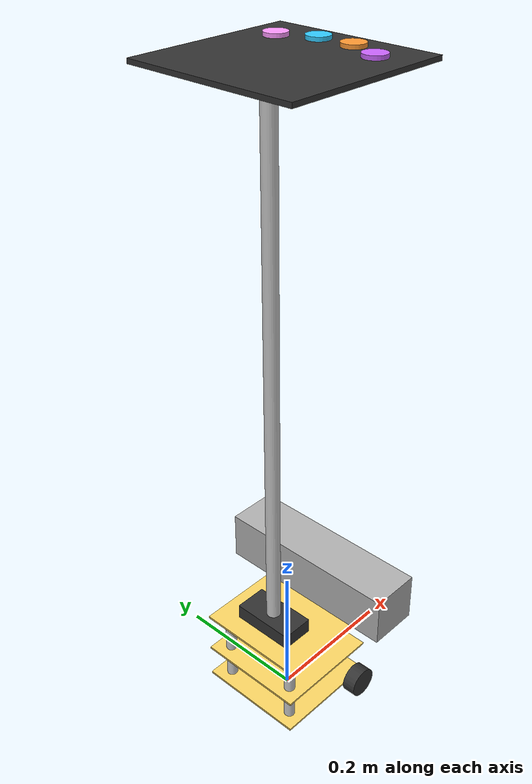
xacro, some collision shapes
<?xml version="1.0" ?>

<robot name="lazarillo" xmlns:xacro="http://www.ros.org/wiki/xacro">
  <!-- External Files -->
  <xacro:include filename="$(find lazarillo)/urdf/macros.xacro"/>

  <!-- Base Link -->
  <link name="base_link"/>

  <!-- Floor 1 -->
  <xacro:floor_link name="floor_1_link"/>
  <xacro:fixed_joint name="floor_1_joint" parent="base_link" child="floor_1_link" origin_xyz="0 0 0.02205"/>

  <!-- Floor 2 -->
  <xacro:floor_link name="floor_2_link"/>
  <xacro:fixed_joint name="floor_2_joint" parent="floor_1_link" child="floor_2_link" origin_xyz="0 0 0.0515"/>

  <!-- Floor 3 -->
  <xacro:floor_link name="floor_3_link"/>
  <xacro:fixed_joint name="floor_3_joint" parent="floor_2_link" child="floor_3_link" origin_xyz="0 0 0.0615"/>

  <!-- Floor 1 Column 1 -->
  <xacro:column_link name="column_1_1_link" height="0.05" color="white"/>
  <xacro:fixed_joint name="column_1_1_joint" parent="floor_1_link" child="column_1_1_link" origin_xyz="-0.058 -0.058 0.0265"/>

  <!-- Floor 1 Column 2 -->
  <xacro:column_link name="column_1_2_link" height="0.05" color="white"/>
  <xacro:fixed_joint name="column_1_2_joint" parent="floor_1_link" child="column_1_2_link" origin_xyz="-0.058 0.058 0.0265"/>

  <!-- Floor 1 Column 3 -->
  <xacro:column_link name="column_1_3_link" height="0.05" color="white"/>
  <xacro:fixed_joint name="column_1_3_joint" parent="floor_1_link" child="column_1_3_link" origin_xyz="0.05795 0.0359 0.0265"/>

  <!-- Floor 1 Column 4 -->
  <xacro:column_link name="column_1_4_link" height="0.05" color="white"/>
  <xacro:fixed_joint name="column_1_4_joint" parent="floor_1_link" child="column_1_4_link" origin_xyz="0.05795 -0.0359 0.0265"/>

  <!-- Floor 2 Column 1 -->
  <xacro:column_link name="column_2_1_link" height="0.06" color="white"/>
  <xacro:fixed_joint name="column_2_1_joint" parent="floor_2_link" child="column_2_1_link" origin_xyz="-0.058 -0.058 0.0265"/>

  <!-- Floor 2 Column 2 -->
  <xacro:column_link name="column_2_2_link" height="0.06" color="white"/>
  <xacro:fixed_joint name="column_2_2_joint" parent="floor_2_link" child="column_2_2_link" origin_xyz="-0.058 0.058 0.0265"/>

  <!-- Floor 2 Column 3 -->
  <xacro:column_link name="column_2_3_link" height="0.06" color="white"/>
  <xacro:fixed_joint name="column_2_3_joint" parent="floor_2_link" child="column_2_3_link" origin_xyz="0.05795 0.0359 0.0265"/>

  <!-- Floor 2 Column 4 -->
  <xacro:column_link name="column_2_4_link" height="0.06" color="white"/>
  <xacro:fixed_joint name="column_2_4_joint" parent="floor_2_link" child="column_2_4_link" origin_xyz="0.05795 -0.0359 0.0265"/>

  <!-- Block 1 -->
  <xacro:block_link name="block_lower_link"/>
  <xacro:fixed_joint name="block_lower_joint" parent="floor_3_link" child="block_lower_link" origin_xyz="-0.0285 0 0.014"/>

  <!-- Cane -->
  <xacro:cane_link name="cane_link"/>
  <xacro:fixed_joint name="cane_joint" parent="block_lower_link" child="cane_link" origin_xyz="0 0 0.379"/>

  <!-- Block 2 -->
  <xacro:block_link name="block_upper_link"/>
  <xacro:fixed_joint name="block_upper_joint" parent="cane_link" child="block_upper_link" origin_xyz="0 0 0.379"/>

  <!-- Board -->
  <xacro:board_link name="board_link"/>
  <xacro:fixed_joint name="board_joint" parent="block_upper_link" child="board_link" origin_xyz="0.025 0 0.014"/>

  <!-- Button 1 -->
  <xacro:button_link name="button_1_link" color="pink"/>
  <xacro:fixed_joint name="button_1_joint" parent="board_link" child="button_1_link" origin_xyz="0.06 0.07 0.003"/>

  <!-- Button 2 -->
  <xacro:button_link name="button_2_link" color="blue"/>
  <xacro:fixed_joint name="button_2_joint" parent="board_link" child="button_2_link" origin_xyz="0.08 0.025 0.003"/>

  <!-- Button 3 -->
  <xacro:button_link name="button_3_link" color="orange"/>
  <xacro:fixed_joint name="button_3_joint" parent="board_link" child="button_3_link" origin_xyz="0.08 -0.025 0.003"/>

  <!-- Button 4 -->
  <xacro:button_link name="button_4_link" color="purple"/>
  <xacro:fixed_joint name="button_4_joint" parent="board_link" child="button_4_link" origin_xyz="0.06 -0.07 0.003"/>

  <!-- Caster Link -->
  <link name="caster_link">
    <visual>
      <origin rpy="0 0 0" xyz="0 0 0"/>
      <geometry>
        <sphere radius="0.011025"/>
      </geometry>
      <material name="grey"/>
    </visual>
    <collision>
      <geometry>
        <sphere radius="0.011025"/>
      </geometry>
      <origin rpy="0 0 0" xyz="0 0 0"/>
    </collision>
    <inertial>
      <mass value="0.75"/>
      <origin xyz="0 0 0"/>
      <inertia ixx="0.001" ixy="0.0" ixz="0.0" iyy="0.001" iyz="0.0" izz="0.001"/>
    </inertial>
  </link>

  <!-- Caster Joint -->
  <joint name="caster_joint" type="fixed">
    <parent link="floor_1_link"/>
    <child link="caster_link"/>
    <origin rpy="0 0 0" xyz="-0.05795 0 -0.011025"/>
  </joint>

  <!-- Left wheel -->
  <xacro:wheel_link name="left_wheel_link"/>
  <xacro:wheel_joint name="left_wheel_joint" child="left_wheel_link" origin_xyz="0.05795 0.090002 0.0"/>

  <!-- Right wheel -->
  <xacro:wheel_link name="right_wheel_link"/>
  <xacro:wheel_joint name="right_wheel_joint" child="right_wheel_link" origin_xyz="0.05795 -0.090002 0.0"/>

  <!-- Kinect -->
  <!-- Kinect Link -->
  <link name="camera_link">
    <visual>
      <origin rpy="0 0 0" xyz="0 0 0"/>
      <geometry>
        <mesh filename="package://lazarillo/meshes/kinect.dae"/>
      </geometry>
    </visual>
    <collision>
      <geometry>
        <box size="0.073 0.276 0.072"/>
      </geometry>
      <origin rpy="0 0 0" xyz="0 0 0"/>
    </collision>
    <inertial>
      <mass value="0.01"/>
      <origin xyz="0 0 0"/>
      <inertia ixx="0.001" ixy="0.0" ixz="0.0" iyy="0.001" iyz="0.0" izz="0.001"/>
    </inertial>
  </link>

  <!-- Kinect Joint -->
  <xacro:fixed_joint name="camera_joint" parent="floor_3_link" child="camera_link" origin_xyz="0.07 0.0 0.051"/>

</robot>

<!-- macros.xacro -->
<robot xmlns:xacro="http://www.ros.org/wiki/xacro">
  <!-- Materials -->

  <material name="white">
    <color rgba=".8 .8 .8 1"/>
  </material>

  <material name="grey">
    <color rgba=".2 .2 .2 1"/>
  </material>

  <material name="light_grey">
    <color rgba=".4 .4 .4 1"/>
  </material>

  <material name="brown">
    <color rgba="1 .85 .4 1"/>
  </material>

  <material name="pink">
    <color rgba="1 .6 1 1"/>
  </material>

  <material name="blue">
    <color rgba=".2 .8 1 1"/>
  </material>

  <material name="orange">
    <color rgba="1 .6 .2 1"/>
  </material>

  <material name="purple">
    <color rgba=".8 .4 1 1"/>
  </material>

  <!-- Links -->

  <!-- Floor Link -->
  <xacro:macro name="floor_link" params="name">
    <link name="${name}">
      <inertial>
        <mass value="1"/>
        <origin rpy="0 0 0" xyz="0 0 0"/>
        <inertia ixx="0.00354167" ixy="0" ixz="0" iyy="0.00354167" iyz="0" izz="0.00426667"/>
      </inertial>
      <collision name="{name}_collision">
        <geometry>
          <box size="0.16 0.16 0.13"/>
        </geometry>
      </collision>
      <visual name="${name}_visual">
        <origin rpy="0 0 0" xyz="0 0 0"/>
        <geometry>
          <box size="0.16 0.16 0.003"/>
        </geometry>
        <material name="brown"/>
      </visual>
    </link>
  </xacro:macro>

  <!-- Board Link -->
  <xacro:macro name="board_link" params="name">
    <link name="${name}">
      <inertial>
        <mass value="1"/>
        <origin rpy="0 0 0" xyz="0 0 0"/>
        <inertia ixx="0.00354167" ixy="0" ixz="0" iyy="0.00354167" iyz="0" izz="0.00426667"/>
      </inertial>
      <collision name="{name}_collision">
        <geometry>
          <box size="0.23 0.23 0.006"/>
        </geometry>
      </collision>
      <visual name="${name}_visual">
        <origin rpy="0 0 0" xyz="0 0 0"/>
        <geometry>
          <box size="0.23 0.23 0.006"/>
        </geometry>
        <material name="grey"/>
      </visual>
    </link>
  </xacro:macro>

  <!-- Column Link -->
  <xacro:macro name="column_link" params="name height color">
    <link name="${name}">
      <inertial>
        <mass value="0.1"/>
        <origin rpy="0 0 0" xyz="0 0 0"/>
        <inertia ixx="0.000526666666667" ixy="0" ixz="0" iyy="0.000526666666667" iyz="0" izz="0.001"/>
      </inertial>
      <collision name="${name}_collision">
        <origin rpy="0 0 0" xyz="0 0 0"/>
        <geometry>
          <cylinder length="${height}" radius="0.00785"/>
        </geometry>
      </collision>
      <visual name="${name}_visual">
        <origin rpy="0 0 0" xyz="0 0 0"/>
        <geometry>
          <cylinder length="${height}" radius="0.00785"/>
        </geometry>
        <material name="${color}"/>
      </visual>
    </link>
  </xacro:macro>

  <!-- Cane Link -->
  <xacro:macro name="cane_link" params="name">
    <link name="${name}">
      <inertial>
        <mass value="0.1"/>
        <origin rpy="0 0 0" xyz="0 0 0"/>
        <inertia ixx="0.000526666666667" ixy="0" ixz="0" iyy="0.000526666666667" iyz="0" izz="0.001"/>
      </inertial>
      <collision name="${name}_collision">
        <origin rpy="0 0 0" xyz="0 0 0"/>
        <geometry>
          <cylinder length="0.736" radius="0.01"/>
        </geometry>
      </collision>
      <visual name="${name}_visual">
        <origin rpy="0 0 0" xyz="0 0 0"/>
        <geometry>
          <cylinder length="0.736" radius="0.01"/>
        </geometry>
        <material name="white"/>
      </visual>
    </link>
  </xacro:macro>

  <!-- Button Link -->
  <xacro:macro name="button_link" params="name color">
    <link name="${name}">
      <inertial>
        <mass value="0.1"/>
        <origin rpy="0 0 0" xyz="0 0 0"/>
        <inertia ixx="0.000526666666667" ixy="0" ixz="0" iyy="0.000526666666667" iyz="0" izz="0.001"/>
      </inertial>
      <collision name="${name}_collision">
        <origin rpy="0 0 0" xyz="0 0 0"/>
        <geometry>
          <cylinder length="0.01" radius="0.015"/>
        </geometry>
      </collision>
      <visual name="${name}_visual">
        <origin rpy="0 0 0" xyz="0 0 0"/>
        <geometry>
          <cylinder length="0.01" radius="0.015"/>
        </geometry>
        <material name="${color}"/>
      </visual>
    </link>
  </xacro:macro>

  <!-- Block Link -->
  <xacro:macro name="block_link" params="name">
    <link name="${name}">
      <inertial>
        <mass value="1"/>
        <origin rpy="0 0 0" xyz="0 0 0"/>
        <inertia ixx="0.00354167" ixy="0" ixz="0" iyy="0.00354167" iyz="0" izz="0.00426667"/>
      </inertial>
      <collision name="{name}_collision">
        <geometry>
          <box size="0.047 0.092 0.022"/>
        </geometry>
      </collision>
      <visual name="${name}_visual">
        <origin rpy="0 0 0" xyz="0 0 0"/>
        <geometry>
          <box size="0.047 0.092 0.022"/>
        </geometry>
        <material name="grey"/>
      </visual>
    </link>
  </xacro:macro>

  <!-- Wheel Link -->
  <xacro:macro name="wheel_link" params="name">
    <link name="${name}">
      <inertial>
        <mass value="0.2"/>
        <origin rpy="0 1.5707 1.5707" xyz="0 0 0"/>
        <inertia ixx="0.000526666666667" ixy="0" ixz="0" iyy="0.000526666666667" iyz="0" izz="0.001"/>
      </inertial>
      <collision name="${name}_collision">
        <origin rpy="0 1.5707 1.5707" xyz="0 0 0"/>
        <geometry>
          <cylinder length="0.02" radius="0.02205"/>
        </geometry>
      </collision>
      <visual name="${name}_visual">
        <origin rpy="0 1.5707 1.5707" xyz="0 0 0"/>
        <geometry>
          <cylinder length="0.02" radius="0.02205"/>
        </geometry>
        <material name="grey"/>
      </visual>
    </link>
  </xacro:macro>

  <!-- Joints -->

  <!-- Fixed Joint -->
  <xacro:macro name="fixed_joint" params="name parent child origin_xyz">
    <joint name="${name}" type="fixed">
      <parent link="${parent}"/>
      <child link="${child}"/>
      <origin rpy="0 0 0" xyz="${origin_xyz}"/>
    </joint>
  </xacro:macro>

  <!-- Wheel Joint -->
  <xacro:macro name="wheel_joint" params="name child origin_xyz">
    <joint name="${name}" type="continuous">
      <origin rpy="0 0 0" xyz="${origin_xyz}"/>
      <child link="${child}"/>
      <parent link="floor_1_link"/>
      <axis rpy="0 0 0" xyz="0 1 0"/>
      <limit effort="10000" velocity="1000"/>
      <joint_properties damping="1.0" friction="1.0"/>
    </joint>
  </xacro:macro>
</robot>
